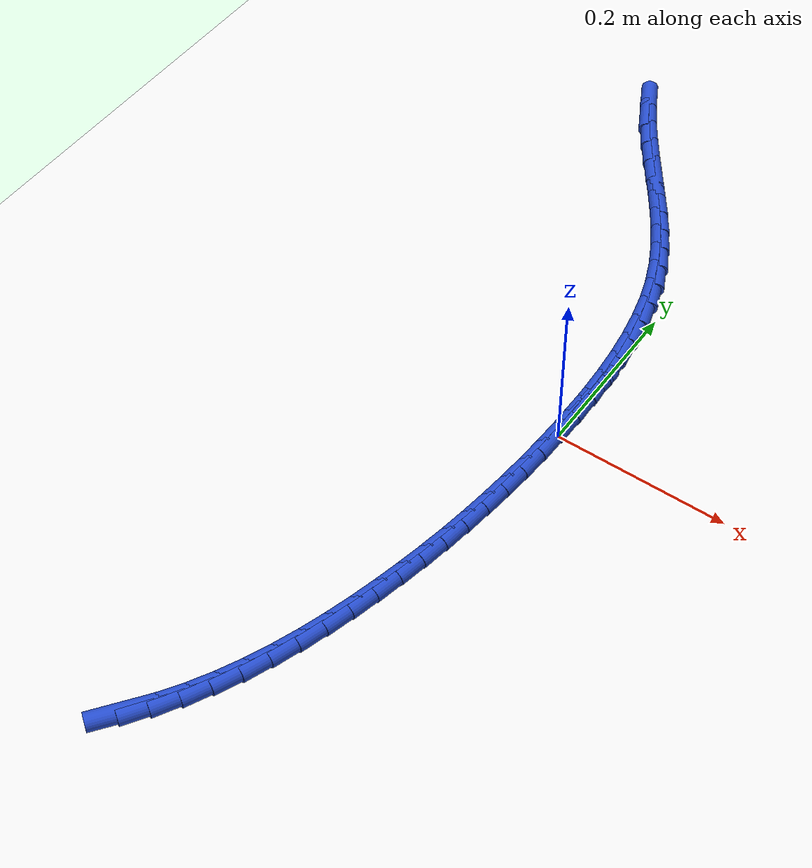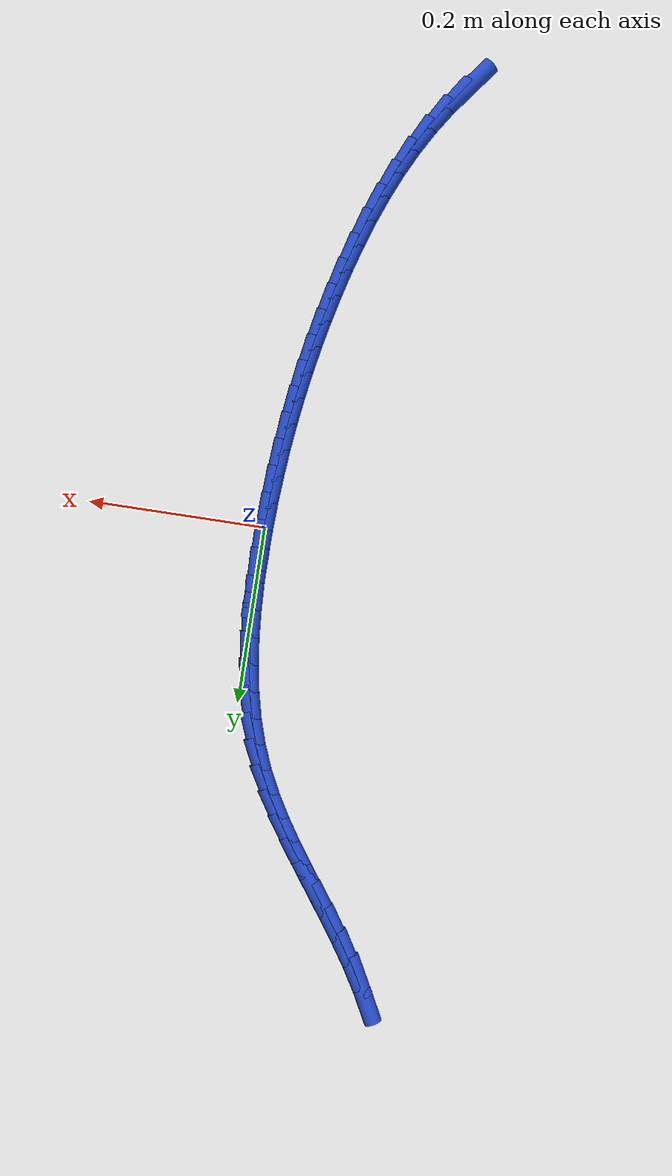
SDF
<sdf version="1.6">
 <world name="default">
  <model name="ground_plane">
   <static>1</static>
   <link name="link">
    <collision name="collision">
     <geometry><plane><normal>0 0 1</normal><size>100 100</size></plane></geometry>
     <surface><friction><ode><mu>100</mu><mu2>50</mu2></ode></friction></surface>
    </collision>
    <visual name="visual">
     <cast_shadows>0</cast_shadows>
     <geometry><plane><normal>0 0 1</normal><size>100 100</size></plane></geometry>
     <material>
      <script><uri>file://media/materials/scripts/gazebo.material</uri><name>Gazebo/WhiteGlow</name></script>
     </material>
    </visual>
   </link>
  </model>
  <model name="line">
   <link name="link_0">
    <pose>2.2551405187698492e-17 -4.163336342344337e-17 0.01 0 1.57 1.5498781008881979</pose>
    <collision name="collision">
     <geometry><cylinder><radius>0.01</radius><length>0.08</length></cylinder></geometry>
    </collision>
    <visual name="visual">
     <material>
      <script><name>Gazebo/Blue</name><uri>file://media/materials/scripts/gazebo.material</uri></script>
     </material>
     <geometry><cylinder><radius>0.01</radius><length>0.08</length></cylinder></geometry>
    </visual>
   </link>
   <link name="link_1">
    <pose>0.000653380118124969 0.031230412078863626 0.01 0 1.57 -1.5650343919891607</pose>
    <collision name="collision">
     <geometry><cylinder><radius>0.01</radius><length>0.08</length></cylinder></geometry>
    </collision>
    <visual name="visual">
     <material>
      <script><name>Gazebo/Blue</name><uri>file://media/materials/scripts/gazebo.material</uri></script>
     </material>
     <geometry><cylinder><radius>0.01</radius><length>0.08</length></cylinder></geometry>
    </visual>
   </link>
   <link name="link_2">
    <pose>0.0004725824035189479 0.06260801697644736 0.01 0 1.57 -1.5326680460943594</pose>
    <collision name="collision">
     <geometry><cylinder><radius>0.01</radius><length>0.08</length></cylinder></geometry>
    </collision>
    <visual name="visual">
     <material>
      <script><name>Gazebo/Blue</name><uri>file://media/materials/scripts/gazebo.material</uri></script>
     </material>
     <geometry><cylinder><radius>0.01</radius><length>0.08</length></cylinder></geometry>
    </visual>
   </link>
   <link name="link_3">
    <pose>-0.000722959943697642 0.0939486104392704 0.01 0 1.57 -1.4941184994613455</pose>
    <collision name="collision">
     <geometry><cylinder><radius>0.01</radius><length>0.08</length></cylinder></geometry>
    </collision>
    <visual name="visual">
     <material>
      <script><name>Gazebo/Blue</name><uri>file://media/materials/scripts/gazebo.material</uri></script>
     </material>
     <geometry><cylinder><radius>0.01</radius><length>0.08</length></cylinder></geometry>
    </visual>
   </link>
   <link name="link_4">
    <pose>-0.0031138137234044076 0.12506798821385204 0.01 0 1.57 -1.4487665864710637</pose>
    <collision name="collision">
     <geometry><cylinder><radius>0.01</radius><length>0.08</length></cylinder></geometry>
    </collision>
    <visual name="visual">
     <material>
      <script><name>Gazebo/Blue</name><uri>file://media/materials/scripts/gazebo.material</uri></script>
     </material>
     <geometry><cylinder><radius>0.01</radius><length>0.08</length></cylinder></geometry>
    </visual>
   </link>
   <link name="link_5">
    <pose>-0.006880545735480947 0.15578194604671153 0.01 0 1.57 -1.3958949804898455</pose>
    <collision name="collision">
     <geometry><cylinder><radius>0.01</radius><length>0.08</length></cylinder></geometry>
    </collision>
    <visual name="visual">
     <material>
      <script><name>Gazebo/Blue</name><uri>file://media/materials/scripts/gazebo.material</uri></script>
     </material>
     <geometry><cylinder><radius>0.01</radius><length>0.08</length></cylinder></geometry>
    </visual>
   </link>
   <link name="link_6">
    <pose>-0.012203722779806872 0.18590627968436815 0.01 0 1.57 -1.3347337859105304</pose>
    <collision name="collision">
     <geometry><cylinder><radius>0.01</radius><length>0.08</length></cylinder></geometry>
    </collision>
    <visual name="visual">
     <material>
      <script><name>Gazebo/Blue</name><uri>file://media/materials/scripts/gazebo.material</uri></script>
     </material>
     <geometry><cylinder><radius>0.01</radius><length>0.08</length></cylinder></geometry>
    </visual>
   </link>
   <link name="link_7">
    <pose>-0.019263911656261786 0.21525678487334116 0.01 0 1.57 -1.2645420316985967</pose>
    <collision name="collision">
     <geometry><cylinder><radius>0.01</radius><length>0.08</length></cylinder></geometry>
    </collision>
    <visual name="visual">
     <material>
      <script><name>Gazebo/Blue</name><uri>file://media/materials/scripts/gazebo.material</uri></script>
     </material>
     <geometry><cylinder><radius>0.01</radius><length>0.08</length></cylinder></geometry>
    </visual>
   </link>
   <link name="link_8">
    <pose>-0.028241679164725274 0.2436492573601497 0.01 0 1.57 -1.1850877499780994</pose>
    <collision name="collision">
     <geometry><cylinder><radius>0.01</radius><length>0.08</length></cylinder></geometry>
    </collision>
    <visual name="visual">
     <material>
      <script><name>Gazebo/Blue</name><uri>file://media/materials/scripts/gazebo.material</uri></script>
     </material>
     <geometry><cylinder><radius>0.01</radius><length>0.08</length></cylinder></geometry>
    </visual>
   </link>
   <link name="link_9">
    <pose>-0.03930927444453318 0.2709061761641429 0.01 0 1.57 -1.1067693629343822</pose>
    <collision name="collision">
     <geometry><cylinder><radius>0.01</radius><length>0.08</length></cylinder></geometry>
    </collision>
    <visual name="visual">
     <material>
      <script><name>Gazebo/Blue</name><uri>file://media/materials/scripts/gazebo.material</uri></script>
     </material>
     <geometry><cylinder><radius>0.01</radius><length>0.08</length></cylinder></geometry>
    </visual>
   </link>
   <link name="link_10">
    <pose>-0.05239257530659287 0.29704798063217674 0.01 0 1.57 -1.0427040034742876</pose>
    <collision name="collision">
     <geometry><cylinder><radius>0.01</radius><length>0.08</length></cylinder></geometry>
    </collision>
    <visual name="visual">
     <material>
      <script><name>Gazebo/Blue</name><uri>file://media/materials/scripts/gazebo.material</uri></script>
     </material>
     <geometry><cylinder><radius>0.01</radius><length>0.08</length></cylinder></geometry>
    </visual>
   </link>
   <link name="link_11">
    <pose>-0.06713595193655919 0.32232130259075104 0.01 0 1.57 -0.9943941034914048</pose>
    <collision name="collision">
     <geometry><cylinder><radius>0.01</radius><length>0.08</length></cylinder></geometry>
    </collision>
    <visual name="visual">
     <material>
      <script><name>Gazebo/Blue</name><uri>file://media/materials/scripts/gazebo.material</uri></script>
     </material>
     <geometry><cylinder><radius>0.01</radius><length>0.08</length></cylinder></geometry>
    </visual>
   </link>
   <link name="link_12">
    <pose>-0.08316839042242219 0.34698513504910466 0.01 0 1.57 -0.961973380178026</pose>
    <collision name="collision">
     <geometry><cylinder><radius>0.01</radius><length>0.08</length></cylinder></geometry>
    </collision>
    <visual name="visual">
     <material>
      <script><name>Gazebo/Blue</name><uri>file://media/materials/scripts/gazebo.material</uri></script>
     </material>
     <geometry><cylinder><radius>0.01</radius><length>0.08</length></cylinder></geometry>
    </visual>
   </link>
   <link name="link_13">
    <pose>-0.10011887685217181 0.3712984710164756 0.01 0 1.57 -0.9452034489846207</pose>
    <collision name="collision">
     <geometry><cylinder><radius>0.01</radius><length>0.08</length></cylinder></geometry>
    </collision>
    <visual name="visual">
     <material>
      <script><name>Gazebo/Blue</name><uri>file://media/materials/scripts/gazebo.material</uri></script>
     </material>
     <geometry><cylinder><radius>0.01</radius><length>0.08</length></cylinder></geometry>
    </visual>
   </link>
   <link name="link_14">
    <pose>-0.11761639731379814 0.39552030350210265 0.01 0 1.57 -0.9437224694510126</pose>
    <collision name="collision">
     <geometry><cylinder><radius>0.01</radius><length>0.08</length></cylinder></geometry>
    </collision>
    <visual name="visual">
     <material>
      <script><name>Gazebo/Blue</name><uri>file://media/materials/scripts/gazebo.material</uri></script>
     </material>
     <geometry><cylinder><radius>0.01</radius><length>0.08</length></cylinder></geometry>
    </visual>
   </link>
   <link name="link_15">
    <pose>-0.13528993789529106 0.419909625515224 0.01 0 1.57 -0.9571693902330888</pose>
    <collision name="collision">
     <geometry><cylinder><radius>0.01</radius><length>0.08</length></cylinder></geometry>
    </collision>
    <visual name="visual">
     <material>
      <script><name>Gazebo/Blue</name><uri>file://media/materials/scripts/gazebo.material</uri></script>
     </material>
     <geometry><cylinder><radius>0.01</radius><length>0.08</length></cylinder></geometry>
    </visual>
   </link>
   <link name="link_16">
    <pose>-0.1527684846846408 0.44472543006507825 0.01 0 1.57 -0.9851951102135572</pose>
    <collision name="collision">
     <geometry><cylinder><radius>0.01</radius><length>0.08</length></cylinder></geometry>
    </collision>
    <visual name="visual">
     <material>
      <script><name>Gazebo/Blue</name><uri>file://media/materials/scripts/gazebo.material</uri></script>
     </material>
     <geometry><cylinder><radius>0.01</radius><length>0.08</length></cylinder></geometry>
    </visual>
   </link>
   <link name="link_17">
    <pose>-0.16968102376983712 0.4702267101609035 0.01 0 1.57 -1.0273775265603264</pose>
    <collision name="collision">
     <geometry><cylinder><radius>0.01</radius><length>0.08</length></cylinder></geometry>
    </collision>
    <visual name="visual">
     <material>
      <script><name>Gazebo/Blue</name><uri>file://media/materials/scripts/gazebo.material</uri></script>
     </material>
     <geometry><cylinder><radius>0.01</radius><length>0.08</length></cylinder></geometry>
    </visual>
   </link>
   <link name="link_18">
    <pose>-0.18565654123887018 0.49667245881193844 0.01 0 1.57 -1.083059446885211</pose>
    <collision name="collision">
     <geometry><cylinder><radius>0.01</radius><length>0.08</length></cylinder></geometry>
    </collision>
    <visual name="visual">
     <material>
      <script><name>Gazebo/Blue</name><uri>file://media/materials/scripts/gazebo.material</uri></script>
     </material>
     <geometry><cylinder><radius>0.01</radius><length>0.08</length></cylinder></geometry>
    </visual>
   </link>
   <link name="link_222">
    <pose>-0.1502612197608574 -0.5211779441240555 0.01 0 1.57 0.9188144810190342</pose>
    <collision name="collision">
     <geometry><cylinder><radius>0.01</radius><length>0.08</length></cylinder></geometry>
    </collision>
    <visual name="visual">
     <material>
      <script><name>Gazebo/Blue</name><uri>file://media/materials/scripts/gazebo.material</uri></script>
     </material>
     <geometry><cylinder><radius>0.01</radius><length>0.08</length></cylinder></geometry>
    </visual>
   </link>
   <link name="link_223">
    <pose>-0.1322023058974765 -0.49752007023178424 0.01 0 1.57 0.9887374477707599</pose>
    <collision name="collision">
     <geometry><cylinder><radius>0.01</radius><length>0.08</length></cylinder></geometry>
    </collision>
    <visual name="visual">
     <material>
      <script><name>Gazebo/Blue</name><uri>file://media/materials/scripts/gazebo.material</uri></script>
     </material>
     <geometry><cylinder><radius>0.01</radius><length>0.08</length></cylinder></geometry>
    </visual>
   </link>
   <link name="link_224">
    <pose>-0.11572518998098431 -0.47248323909634266 0.01 0 1.57 1.0534008457351105</pose>
    <collision name="collision">
     <geometry><cylinder><radius>0.01</radius><length>0.08</length></cylinder></geometry>
    </collision>
    <visual name="visual">
     <material>
      <script><name>Gazebo/Blue</name><uri>file://media/materials/scripts/gazebo.material</uri></script>
     </material>
     <geometry><cylinder><radius>0.01</radius><length>0.08</length></cylinder></geometry>
    </visual>
   </link>
   <link name="link_225">
    <pose>-0.10076699843728008 -0.4461996950013433 0.01 0 1.57 1.1111775858111836</pose>
    <collision name="collision">
     <geometry><cylinder><radius>0.01</radius><length>0.08</length></cylinder></geometry>
    </collision>
    <visual name="visual">
     <material>
      <script><name>Gazebo/Blue</name><uri>file://media/materials/scripts/gazebo.material</uri></script>
     </material>
     <geometry><cylinder><radius>0.01</radius><length>0.08</length></cylinder></geometry>
    </visual>
   </link>
   <link name="link_226">
    <pose>-0.08722851779691737 -0.4188477930756221 0.01 0 1.57 1.1624900974404935</pose>
    <collision name="collision">
     <geometry><cylinder><radius>0.01</radius><length>0.08</length></cylinder></geometry>
    </collision>
    <visual name="visual">
     <material>
      <script><name>Gazebo/Blue</name><uri>file://media/materials/scripts/gazebo.material</uri></script>
     </material>
     <geometry><cylinder><radius>0.01</radius><length>0.08</length></cylinder></geometry>
    </visual>
   </link>
   <link name="link_227">
    <pose>-0.07501053459044969 -0.3906058884480148 0.01 0 1.57 1.2078198632500279</pose>
    <collision name="collision">
     <geometry><cylinder><radius>0.01</radius><length>0.08</length></cylinder></geometry>
    </collision>
    <visual name="visual">
     <material>
      <script><name>Gazebo/Blue</name><uri>file://media/materials/scripts/gazebo.material</uri></script>
     </material>
     <geometry><cylinder><radius>0.01</radius><length>0.08</length></cylinder></geometry>
    </visual>
   </link>
   <link name="link_228">
    <pose>-0.0640138353484306 -0.3616523362473571 0.01 0 1.57 1.2476521558757174</pose>
    <collision name="collision">
     <geometry><cylinder><radius>0.01</radius><length>0.08</length></cylinder></geometry>
    </collision>
    <visual name="visual">
     <material>
      <script><name>Gazebo/Blue</name><uri>file://media/materials/scripts/gazebo.material</uri></script>
     </material>
     <geometry><cylinder><radius>0.01</radius><length>0.08</length></cylinder></geometry>
    </visual>
   </link>
   <link name="link_229">
    <pose>-0.054139206601413574 -0.33216549160248476 0.01 0 1.57 1.2824401745832041</pose>
    <collision name="collision">
     <geometry><cylinder><radius>0.01</radius><length>0.08</length></cylinder></geometry>
    </collision>
    <visual name="visual">
     <material>
      <script><name>Gazebo/Blue</name><uri>file://media/materials/scripts/gazebo.material</uri></script>
     </material>
     <geometry><cylinder><radius>0.01</radius><length>0.08</length></cylinder></geometry>
    </visual>
   </link>
   <link name="link_230">
    <pose>-0.04528743487995196 -0.3023237096422328 0.01 0 1.57 1.3125830650175634</pose>
    <collision name="collision">
     <geometry><cylinder><radius>0.01</radius><length>0.08</length></cylinder></geometry>
    </collision>
    <visual name="visual">
     <material>
      <script><name>Gazebo/Blue</name><uri>file://media/materials/scripts/gazebo.material</uri></script>
     </material>
     <geometry><cylinder><radius>0.01</radius><length>0.08</length></cylinder></geometry>
    </visual>
   </link>
   <link name="link_231">
    <pose>-0.037359306714599735 -0.2723053454954386 0.01 0 1.57 1.338534206062898</pose>
    <collision name="collision">
     <geometry><cylinder><radius>0.01</radius><length>0.08</length></cylinder></geometry>
    </collision>
    <visual name="visual">
     <material>
      <script><name>Gazebo/Blue</name><uri>file://media/materials/scripts/gazebo.material</uri></script>
     </material>
     <geometry><cylinder><radius>0.01</radius><length>0.08</length></cylinder></geometry>
    </visual>
   </link>
   <link name="link_232">
    <pose>-0.030257963909040387 -0.24228243194217783 0.01 0 1.57 1.3627056646387625</pose>
    <collision name="collision">
     <geometry><cylinder><radius>0.01</radius><length>0.08</length></cylinder></geometry>
    </collision>
    <visual name="visual">
     <material>
      <script><name>Gazebo/Blue</name><uri>file://media/materials/scripts/gazebo.material</uri></script>
     </material>
     <geometry><cylinder><radius>0.01</radius><length>0.08</length></cylinder></geometry>
    </visual>
   </link>
   <link name="link_233">
    <pose>-0.023929646494760676 -0.2123113115593059 0.01 0 1.57 1.3869628139353969</pose>
    <collision name="collision">
     <geometry><cylinder><radius>0.01</radius><length>0.08</length></cylinder></geometry>
    </collision>
    <visual name="visual">
     <material>
      <script><name>Gazebo/Blue</name><uri>file://media/materials/scripts/gazebo.material</uri></script>
     </material>
     <geometry><cylinder><radius>0.01</radius><length>0.08</length></cylinder></geometry>
    </visual>
   </link>
   <link name="link_234">
    <pose>-0.018358313437600287 -0.1823470765613542 0.01 0 1.57 1.411224569222581</pose>
    <collision name="collision">
     <geometry><cylinder><radius>0.01</radius><length>0.08</length></cylinder></geometry>
    </collision>
    <visual name="visual">
     <material>
      <script><name>Gazebo/Blue</name><uri>file://media/materials/scripts/gazebo.material</uri></script>
     </material>
     <geometry><cylinder><radius>0.01</radius><length>0.08</length></cylinder></geometry>
    </visual>
   </link>
   <link name="link_235">
    <pose>-0.013529197119806657 -0.15234140088301976 0.01 0 1.57 1.4353422317409552</pose>
    <collision name="collision">
     <geometry><cylinder><radius>0.01</radius><length>0.08</length></cylinder></geometry>
    </collision>
    <visual name="visual">
     <material>
      <script><name>Gazebo/Blue</name><uri>file://media/materials/scripts/gazebo.material</uri></script>
     </material>
     <geometry><cylinder><radius>0.01</radius><length>0.08</length></cylinder></geometry>
    </visual>
   </link>
   <link name="link_236">
    <pose>-0.009427529923627213 -0.12224595845899958 0.01 0 1.57 1.4591687069390389</pose>
    <collision name="collision">
     <geometry><cylinder><radius>0.01</radius><length>0.08</length></cylinder></geometry>
    </collision>
    <visual name="visual">
     <material>
      <script><name>Gazebo/Blue</name><uri>file://media/materials/scripts/gazebo.material</uri></script>
     </material>
     <geometry><cylinder><radius>0.01</radius><length>0.08</length></cylinder></geometry>
    </visual>
   </link>
   <link name="link_237">
    <pose>-0.006038544231309392 -0.09201242322399057 0.01 0 1.57 1.4825619866077255</pose>
    <collision name="collision">
     <geometry><cylinder><radius>0.01</radius><length>0.08</length></cylinder></geometry>
    </collision>
    <visual name="visual">
     <material>
      <script><name>Gazebo/Blue</name><uri>file://media/materials/scripts/gazebo.material</uri></script>
     </material>
     <geometry><cylinder><radius>0.01</radius><length>0.08</length></cylinder></geometry>
    </visual>
   </link>
   <link name="link_238">
    <pose>-0.003347472425100564 -0.061592469112688966 0.01 0 1.57 1.5053883682631606</pose>
    <collision name="collision">
     <geometry><cylinder><radius>0.01</radius><length>0.08</length></cylinder></geometry>
    </collision>
    <visual name="visual">
     <material>
      <script><name>Gazebo/Blue</name><uri>file://media/materials/scripts/gazebo.material</uri></script>
     </material>
     <geometry><cylinder><radius>0.01</radius><length>0.08</length></cylinder></geometry>
    </visual>
   </link>
   <link name="link_239">
    <pose>-0.0013395468872483079 -0.030937770059793403 0.01 0 1.57 1.5275252464780467</pose>
    <collision name="collision">
     <geometry><cylinder><radius>0.01</radius><length>0.08</length></cylinder></geometry>
    </collision>
    <visual name="visual">
     <material>
      <script><name>Gazebo/Blue</name><uri>file://media/materials/scripts/gazebo.material</uri></script>
     </material>
     <geometry><cylinder><radius>0.01</radius><length>0.08</length></cylinder></geometry>
    </visual>
   </link>
   <link name="link_240">
    <pose>2.2551405187698492e-17 -4.163336342344337e-17 0.01 0 1.57 1.5488633518318118</pose>
    <collision name="collision">
     <geometry><cylinder><radius>0.01</radius><length>0.08</length></cylinder></geometry>
    </collision>
    <visual name="visual">
     <material>
      <script><name>Gazebo/Blue</name><uri>file://media/materials/scripts/gazebo.material</uri></script>
     </material>
     <geometry><cylinder><radius>0.01</radius><length>0.08</length></cylinder></geometry>
    </visual>
   </link>
   <link name="link_241">
    <pose>0.0006859358543969954 0.03126916713199413 0.01 0 1.57 1.569308362947116</pose>
    <collision name="collision">
     <geometry><cylinder><radius>0.01</radius><length>0.08</length></cylinder></geometry>
    </collision>
    <visual name="visual">
     <material>
      <script><name>Gazebo/Blue</name><uri>file://media/materials/scripts/gazebo.material</uri></script>
     </material>
     <geometry><cylinder><radius>0.01</radius><length>0.08</length></cylinder></geometry>
    </visual>
   </link>
   <link name="link_242">
    <pose>0.000733028293695176 0.06291805740149212 0.01 0 1.57 1.5591463305795275</pose>
    <collision name="collision">
     <geometry><cylinder><radius>0.01</radius><length>0.08</length></cylinder></geometry>
    </collision>
    <visual name="visual">
     <material>
      <script><name>Gazebo/Blue</name><uri>file://media/materials/scripts/gazebo.material</uri></script>
     </material>
     <geometry><cylinder><radius>0.01</radius><length>0.08</length></cylinder></geometry>
    </visual>
   </link>
  </model>
 </world>
</sdf>
